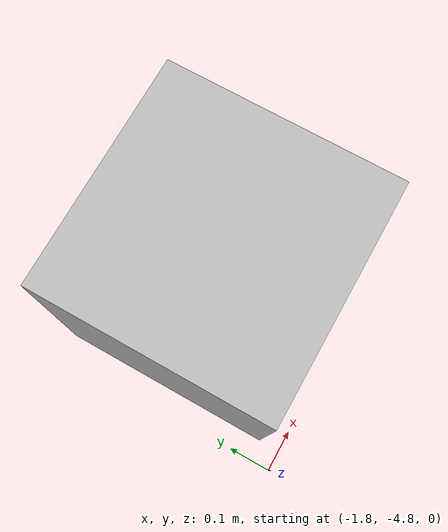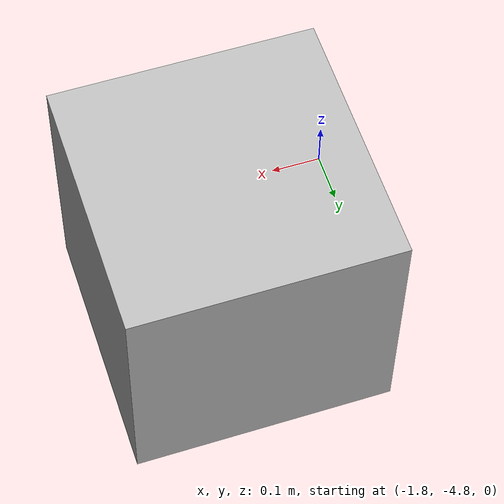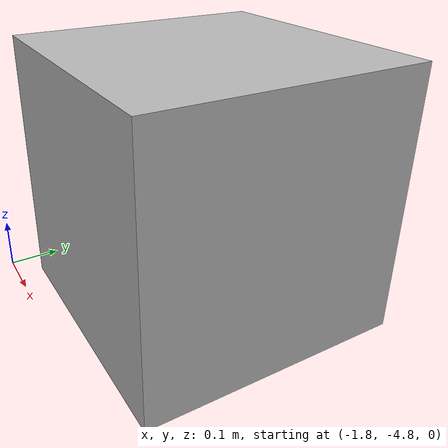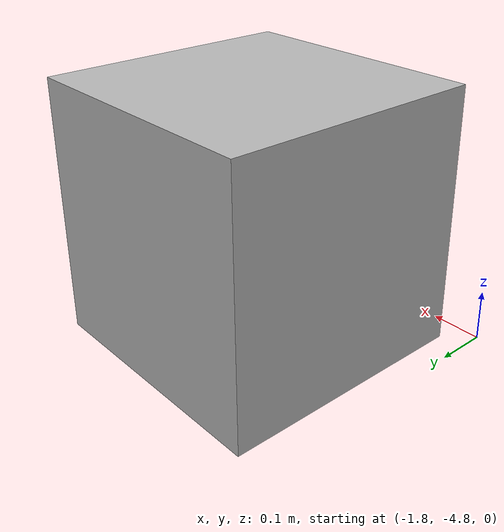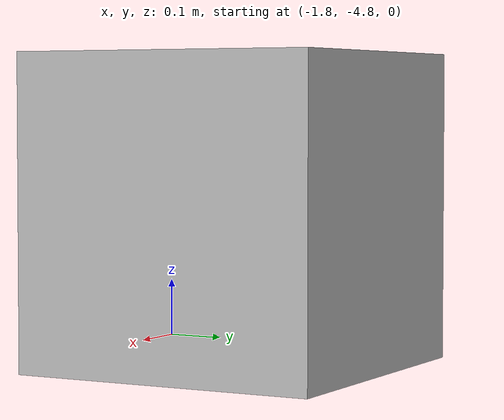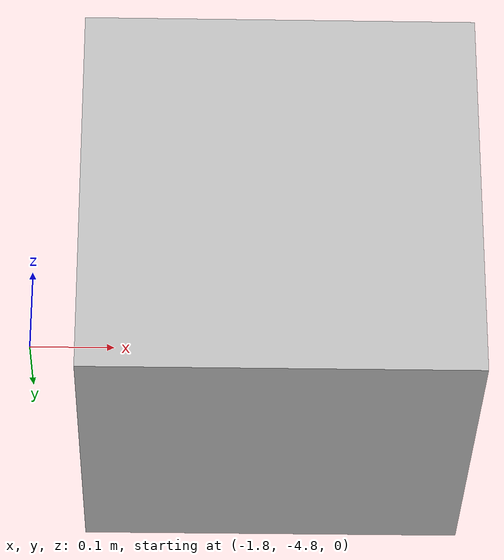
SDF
<?xml version="1.0" ?>
<sdf version="1.4">
  <model name="the-box-1">
    <static>true</static>
    <link name="chassis">
      <pose>-1.5 -4.5 0.25 0 0 0</pose>
      <collision name="collision">
        <geometry>
          <box>
            <size>.5 .5 .5 </size>
          </box>
        </geometry>
      </collision>
      <visual name="visual">
        <geometry>
          <box>
            <size>.5 .5 .5</size>
          </box>
        </geometry>
        <material>Gazebo/Blue</material>
      </visual>
      <gravity>1</gravity>
    </link>
  </model>
</sdf>
